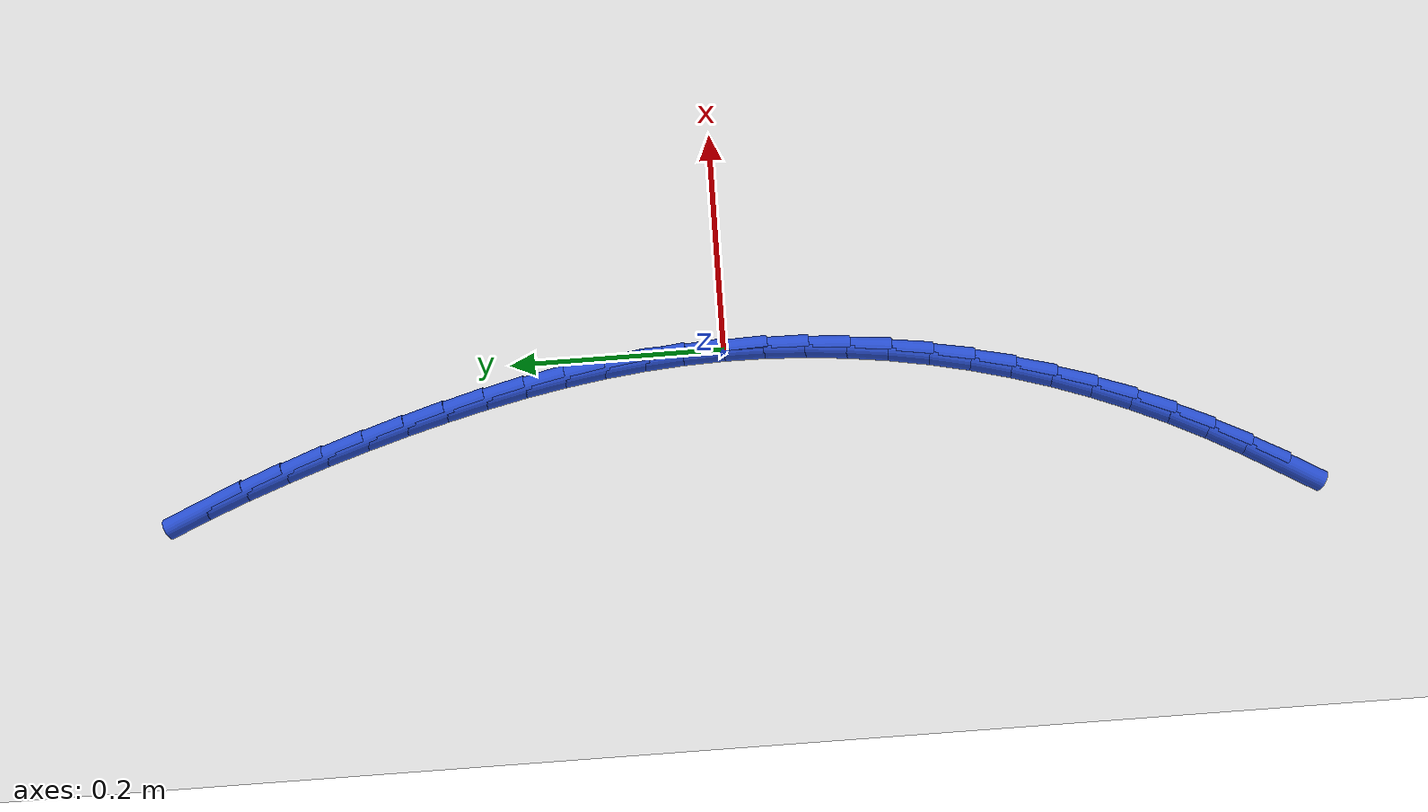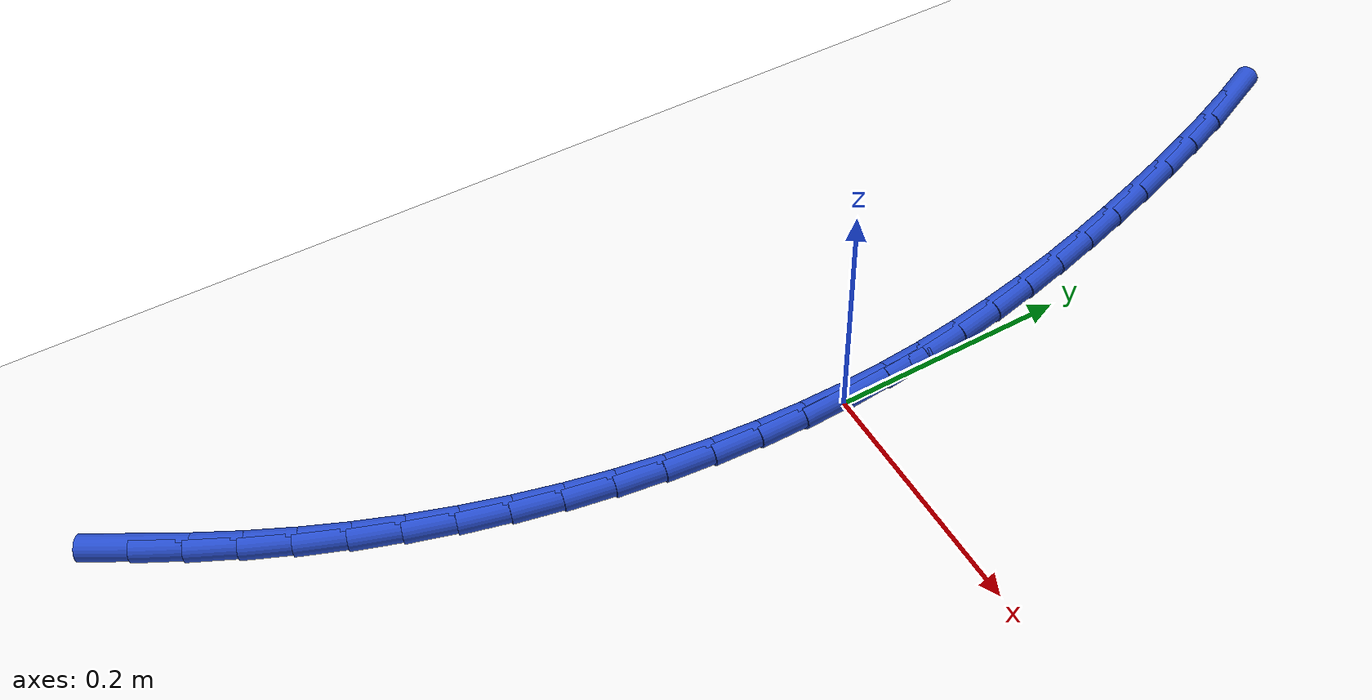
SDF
<sdf version="1.6">
 <world name="default">
  <model name="ground_plane">
   <static>1</static>
   <link name="link">
    <collision name="collision">
     <geometry><plane><normal>0 0 1</normal><size>100 100</size></plane></geometry>
     <surface><friction><ode><mu>100</mu><mu2>50</mu2></ode></friction></surface>
    </collision>
    <visual name="visual">
     <cast_shadows>0</cast_shadows>
     <geometry><plane><normal>0 0 1</normal><size>100 100</size></plane></geometry>
     <material>
      <script><uri>file://media/materials/scripts/gazebo.material</uri><name>Gazebo/WhiteGlow</name></script>
     </material>
    </visual>
   </link>
  </model>
  <model name="line">
   <link name="link_0">
    <pose>-3.469446951953614e-18 6.938893903907228e-18 0.01 0 1.57 -1.536955382912983</pose>
    <collision name="collision">
     <geometry><cylinder><radius>0.01</radius><length>0.08</length></cylinder></geometry>
    </collision>
    <visual name="visual">
     <material>
      <script><name>Gazebo/Blue</name><uri>file://media/materials/scripts/gazebo.material</uri></script>
     </material>
     <geometry><cylinder><radius>0.01</radius><length>0.08</length></cylinder></geometry>
    </visual>
   </link>
   <link name="link_1">
    <pose>-0.001274864380905431 0.03765786456587818 0.01 0 1.57 -1.4963036334648052</pose>
    <collision name="collision">
     <geometry><cylinder><radius>0.01</radius><length>0.08</length></cylinder></geometry>
    </collision>
    <visual name="visual">
     <material>
      <script><name>Gazebo/Blue</name><uri>file://media/materials/scripts/gazebo.material</uri></script>
     </material>
     <geometry><cylinder><radius>0.01</radius><length>0.08</length></cylinder></geometry>
    </visual>
   </link>
   <link name="link_2">
    <pose>-0.004071234729490556 0.07512725660731503 0.01 0 1.57 -1.4580223129113172</pose>
    <collision name="collision">
     <geometry><cylinder><radius>0.01</radius><length>0.08</length></cylinder></geometry>
    </collision>
    <visual name="visual">
     <material>
      <script><name>Gazebo/Blue</name><uri>file://media/materials/scripts/gazebo.material</uri></script>
     </material>
     <geometry><cylinder><radius>0.01</radius><length>0.08</length></cylinder></geometry>
    </visual>
   </link>
   <link name="link_3">
    <pose>-0.008299824701219576 0.11246430117498292 0.01 0 1.57 -1.4223683651081251</pose>
    <collision name="collision">
     <geometry><cylinder><radius>0.01</radius><length>0.08</length></cylinder></geometry>
    </collision>
    <visual name="visual">
     <material>
      <script><name>Gazebo/Blue</name><uri>file://media/materials/scripts/gazebo.material</uri></script>
     </material>
     <geometry><cylinder><radius>0.01</radius><length>0.08</length></cylinder></geometry>
    </visual>
   </link>
   <link name="link_4">
    <pose>-0.0138713479515567 0.1497251233195543 0.01 0 1.57 -1.3895362017610302</pose>
    <collision name="collision">
     <geometry><cylinder><radius>0.01</radius><length>0.08</length></cylinder></geometry>
    </collision>
    <visual name="visual">
     <material>
      <script><name>Gazebo/Blue</name><uri>file://media/materials/scripts/gazebo.material</uri></script>
     </material>
     <geometry><cylinder><radius>0.01</radius><length>0.08</length></cylinder></geometry>
    </visual>
   </link>
   <link name="link_5">
    <pose>-0.020696518135966104 0.1869658480917014 0.01 0 1.57 -1.3596605390959235</pose>
    <collision name="collision">
     <geometry><cylinder><radius>0.01</radius><length>0.08</length></cylinder></geometry>
    </collision>
    <visual name="visual">
     <material>
      <script><name>Gazebo/Blue</name><uri>file://media/materials/scripts/gazebo.material</uri></script>
     </material>
     <geometry><cylinder><radius>0.01</radius><length>0.08</length></cylinder></geometry>
    </visual>
   </link>
   <link name="link_6">
    <pose>-0.028686048909911978 0.22424260054209655 0.01 0 1.57 -1.3328219866275868</pose>
    <collision name="collision">
     <geometry><cylinder><radius>0.01</radius><length>0.08</length></cylinder></geometry>
    </collision>
    <visual name="visual">
     <material>
      <script><name>Gazebo/Blue</name><uri>file://media/materials/scripts/gazebo.material</uri></script>
     </material>
     <geometry><cylinder><radius>0.01</radius><length>0.08</length></cylinder></geometry>
    </visual>
   </link>
   <link name="link_7">
    <pose>-0.037750653928858555 0.2616115057214123 0.01 0 1.57 -1.3090542865841548</pose>
    <collision name="collision">
     <geometry><cylinder><radius>0.01</radius><length>0.08</length></cylinder></geometry>
    </collision>
    <visual name="visual">
     <material>
      <script><name>Gazebo/Blue</name><uri>file://media/materials/scripts/gazebo.material</uri></script>
     </material>
     <geometry><cylinder><radius>0.01</radius><length>0.08</length></cylinder></geometry>
    </visual>
   </link>
   <link name="link_8">
    <pose>-0.047801046848269996 0.29912868868032083 0.01 0 1.57 -1.2883522224527768</pose>
    <collision name="collision">
     <geometry><cylinder><radius>0.01</radius><length>0.08</length></cylinder></geometry>
    </collision>
    <visual name="visual">
     <material>
      <script><name>Gazebo/Blue</name><uri>file://media/materials/scripts/gazebo.material</uri></script>
     </material>
     <geometry><cylinder><radius>0.01</radius><length>0.08</length></cylinder></geometry>
    </visual>
   </link>
   <link name="link_9">
    <pose>-0.05874794132361052 0.33685027446949467 0.01 0 1.57 -1.2700182677620713</pose>
    <collision name="collision">
     <geometry><cylinder><radius>0.01</radius><length>0.08</length></cylinder></geometry>
    </collision>
    <visual name="visual">
     <material>
      <script><name>Gazebo/Blue</name><uri>file://media/materials/scripts/gazebo.material</uri></script>
     </material>
     <geometry><cylinder><radius>0.01</radius><length>0.08</length></cylinder></geometry>
    </visual>
   </link>
   <link name="link_10">
    <pose>-0.07052051174366726 0.37480317325983403 0.01 0 1.57 -1.2499681049453149</pose>
    <collision name="collision">
     <geometry><cylinder><radius>0.01</radius><length>0.08</length></cylinder></geometry>
    </collision>
    <visual name="visual">
     <material>
      <script><name>Gazebo/Blue</name><uri>file://media/materials/scripts/gazebo.material</uri></script>
     </material>
     <geometry><cylinder><radius>0.01</radius><length>0.08</length></cylinder></geometry>
    </visual>
   </link>
   <link name="link_11">
    <pose>-0.0831596524420396 0.4128374937540238 0.01 0 1.57 -1.2265370548295362</pose>
    <collision name="collision">
     <geometry><cylinder><radius>0.01</radius><length>0.08</length></cylinder></geometry>
    </collision>
    <visual name="visual">
     <material>
      <script><name>Gazebo/Blue</name><uri>file://media/materials/scripts/gazebo.material</uri></script>
     </material>
     <geometry><cylinder><radius>0.01</radius><length>0.08</length></cylinder></geometry>
    </visual>
   </link>
   <link name="link_12">
    <pose>-0.09674806787344287 0.4507371783957881 0.01 0 1.57 -1.1994857653195417</pose>
    <collision name="collision">
     <geometry><cylinder><radius>0.01</radius><length>0.08</length></cylinder></geometry>
    </collision>
    <visual name="visual">
     <material>
      <script><name>Gazebo/Blue</name><uri>file://media/materials/scripts/gazebo.material</uri></script>
     </material>
     <geometry><cylinder><radius>0.01</radius><length>0.08</length></cylinder></geometry>
    </visual>
   </link>
   <link name="link_13">
    <pose>-0.11136853550880511 0.48828605407765174 0.01 0 1.57 -1.168513662584217</pose>
    <collision name="collision">
     <geometry><cylinder><radius>0.01</radius><length>0.08</length></cylinder></geometry>
    </collision>
    <visual name="visual">
     <material>
      <script><name>Gazebo/Blue</name><uri>file://media/materials/scripts/gazebo.material</uri></script>
     </material>
     <geometry><cylinder><radius>0.01</radius><length>0.08</length></cylinder></geometry>
    </visual>
   </link>
   <link name="link_166">
    <pose>-0.14116137415840385 -0.5076890247139875 0.01 0 1.57 1.0469231107397334</pose>
    <collision name="collision">
     <geometry><cylinder><radius>0.01</radius><length>0.08</length></cylinder></geometry>
    </collision>
    <visual name="visual">
     <material>
      <script><name>Gazebo/Blue</name><uri>file://media/materials/scripts/gazebo.material</uri></script>
     </material>
     <geometry><cylinder><radius>0.01</radius><length>0.08</length></cylinder></geometry>
    </visual>
   </link>
   <link name="link_167">
    <pose>-0.12215331169699754 -0.4747869511893094 0.01 0 1.57 1.081082487399576</pose>
    <collision name="collision">
     <geometry><cylinder><radius>0.01</radius><length>0.08</length></cylinder></geometry>
    </collision>
    <visual name="visual">
     <material>
      <script><name>Gazebo/Blue</name><uri>file://media/materials/scripts/gazebo.material</uri></script>
     </material>
     <geometry><cylinder><radius>0.01</radius><length>0.08</length></cylinder></geometry>
    </visual>
   </link>
   <link name="link_168">
    <pose>-0.1043142029666549 -0.4413189993438898 0.01 0 1.57 1.117374583436878</pose>
    <collision name="collision">
     <geometry><cylinder><radius>0.01</radius><length>0.08</length></cylinder></geometry>
    </collision>
    <visual name="visual">
     <material>
      <script><name>Gazebo/Blue</name><uri>file://media/materials/scripts/gazebo.material</uri></script>
     </material>
     <geometry><cylinder><radius>0.01</radius><length>0.08</length></cylinder></geometry>
    </visual>
   </link>
   <link name="link_169">
    <pose>-0.08771191907970245 -0.40724781390937526 0.01 0 1.57 1.1557005129685858</pose>
    <collision name="collision">
     <geometry><cylinder><radius>0.01</radius><length>0.08</length></cylinder></geometry>
    </collision>
    <visual name="visual">
     <material>
      <script><name>Gazebo/Blue</name><uri>file://media/materials/scripts/gazebo.material</uri></script>
     </material>
     <geometry><cylinder><radius>0.01</radius><length>0.08</length></cylinder></geometry>
    </visual>
   </link>
   <link name="link_170">
    <pose>-0.07241433114846656 -0.372536039617412 0.01 0 1.57 1.1959252366783921</pose>
    <collision name="collision">
     <geometry><cylinder><radius>0.01</radius><length>0.08</length></cylinder></geometry>
    </collision>
    <visual name="visual">
     <material>
      <script><name>Gazebo/Blue</name><uri>file://media/materials/scripts/gazebo.material</uri></script>
     </material>
     <geometry><cylinder><radius>0.01</radius><length>0.08</length></cylinder></geometry>
    </visual>
   </link>
   <link name="link_171">
    <pose>-0.05848928982650637 -0.3371463813979327 0.01 0 1.57 1.2372930192358313</pose>
    <collision name="collision">
     <geometry><cylinder><radius>0.01</radius><length>0.08</length></cylinder></geometry>
    </collision>
    <visual name="visual">
     <material>
      <script><name>Gazebo/Blue</name><uri>file://media/materials/scripts/gazebo.material</uri></script>
     </material>
     <geometry><cylinder><radius>0.01</radius><length>0.08</length></cylinder></geometry>
    </visual>
   </link>
   <link name="link_172">
    <pose>-0.04599293078600302 -0.30107601457435323 0.01 0 1.57 1.2782311628577416</pose>
    <collision name="collision">
     <geometry><cylinder><radius>0.01</radius><length>0.08</length></cylinder></geometry>
    </collision>
    <visual name="visual">
     <material>
      <script><name>Gazebo/Blue</name><uri>file://media/materials/scripts/gazebo.material</uri></script>
     </material>
     <geometry><cylinder><radius>0.01</radius><length>0.08</length></cylinder></geometry>
    </visual>
   </link>
   <link name="link_173">
    <pose>-0.03495008634392165 -0.26441422208314974 0.01 0 1.57 1.3186735458804257</pose>
    <collision name="collision">
     <geometry><cylinder><radius>0.01</radius><length>0.08</length></cylinder></geometry>
    </collision>
    <visual name="visual">
     <material>
      <script><name>Gazebo/Blue</name><uri>file://media/materials/scripts/gazebo.material</uri></script>
     </material>
     <geometry><cylinder><radius>0.01</radius><length>0.08</length></cylinder></geometry>
    </visual>
   </link>
   <link name="link_174">
    <pose>-0.025380416214486484 -0.22726550682966454 0.01 0 1.57 1.3588255523078006</pose>
    <collision name="collision">
     <geometry><cylinder><radius>0.01</radius><length>0.08</length></cylinder></geometry>
    </collision>
    <visual name="visual">
     <material>
      <script><name>Gazebo/Blue</name><uri>file://media/materials/scripts/gazebo.material</uri></script>
     </material>
     <geometry><cylinder><radius>0.01</radius><length>0.08</length></cylinder></geometry>
    </visual>
   </link>
   <link name="link_175">
    <pose>-0.017303580111921707 -0.18973437171923985 0.01 0 1.57 1.3988916421744304</pose>
    <collision name="collision">
     <geometry><cylinder><radius>0.01</radius><length>0.08</length></cylinder></geometry>
    </collision>
    <visual name="visual">
     <material>
      <script><name>Gazebo/Blue</name><uri>file://media/materials/scripts/gazebo.material</uri></script>
     </material>
     <geometry><cylinder><radius>0.01</radius><length>0.08</length></cylinder></geometry>
    </visual>
   </link>
   <link name="link_176">
    <pose>-0.010739237750451375 -0.1519253196572171 0.01 0 1.57 1.4390762835884396</pose>
    <collision name="collision">
     <geometry><cylinder><radius>0.01</radius><length>0.08</length></cylinder></geometry>
    </collision>
    <visual name="visual">
     <material>
      <script><name>Gazebo/Blue</name><uri>file://media/materials/scripts/gazebo.material</uri></script>
     </material>
     <geometry><cylinder><radius>0.01</radius><length>0.08</length></cylinder></geometry>
    </visual>
   </link>
   <link name="link_177">
    <pose>-0.0057070488442999435 -0.11394285354893996 0.01 0 1.57 1.4795849449902394</pose>
    <collision name="collision">
     <geometry><cylinder><radius>0.01</radius><length>0.08</length></cylinder></geometry>
    </collision>
    <visual name="visual">
     <material>
      <script><name>Gazebo/Blue</name><uri>file://media/materials/scripts/gazebo.material</uri></script>
     </material>
     <geometry><cylinder><radius>0.01</radius><length>0.08</length></cylinder></geometry>
    </visual>
   </link>
   <link name="link_178">
    <pose>-0.0022266731076914428 -0.07589147629974993 0.01 0 1.57 1.5206250390107667</pose>
    <collision name="collision">
     <geometry><cylinder><radius>0.01</radius><length>0.08</length></cylinder></geometry>
    </collision>
    <visual name="visual">
     <material>
      <script><name>Gazebo/Blue</name><uri>file://media/materials/scripts/gazebo.material</uri></script>
     </material>
     <geometry><cylinder><radius>0.01</radius><length>0.08</length></cylinder></geometry>
    </visual>
   </link>
   <link name="link_179">
    <pose>-0.00031777025485006574 -0.037875690814989156 0.01 0 1.57 1.5624067029365771</pose>
    <collision name="collision">
     <geometry><cylinder><radius>0.01</radius><length>0.08</length></cylinder></geometry>
    </collision>
    <visual name="visual">
     <material>
      <script><name>Gazebo/Blue</name><uri>file://media/materials/scripts/gazebo.material</uri></script>
     </material>
     <geometry><cylinder><radius>0.01</radius><length>0.08</length></cylinder></geometry>
    </visual>
   </link>
   <link name="link_180">
    <pose>3.469446951953614e-18 1.1796119636642288e-16 0.01 0 1.57 -1.5364493695074506</pose>
    <collision name="collision">
     <geometry><cylinder><radius>0.01</radius><length>0.08</length></cylinder></geometry>
    </collision>
    <visual name="visual">
     <material>
      <script><name>Gazebo/Blue</name><uri>file://media/materials/scripts/gazebo.material</uri></script>
     </material>
     <geometry><cylinder><radius>0.01</radius><length>0.08</length></cylinder></geometry>
    </visual>
   </link>
   <link name="link_181">
    <pose>-0.0012930220573654175 0.03763109323987573 0.01 0 1.57 -1.536449369507451</pose>
    <collision name="collision">
     <geometry><cylinder><radius>0.01</radius><length>0.08</length></cylinder></geometry>
    </collision>
    <visual name="visual">
     <material>
      <script><name>Gazebo/Blue</name><uri>file://media/materials/scripts/gazebo.material</uri></script>
     </material>
     <geometry><cylinder><radius>0.01</radius><length>0.08</length></cylinder></geometry>
    </visual>
   </link>
  </model>
 </world>
</sdf>
